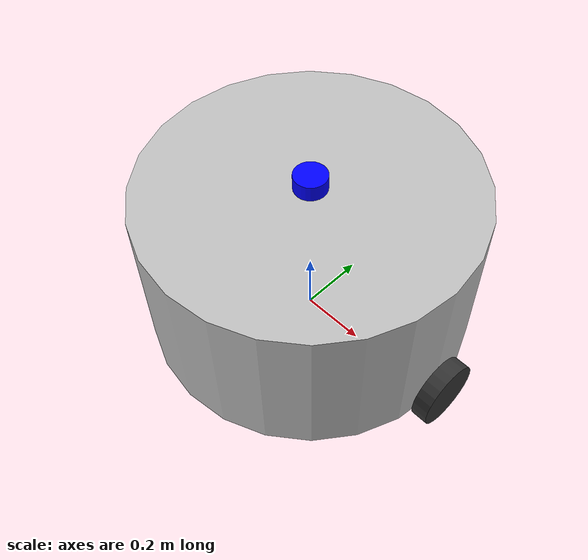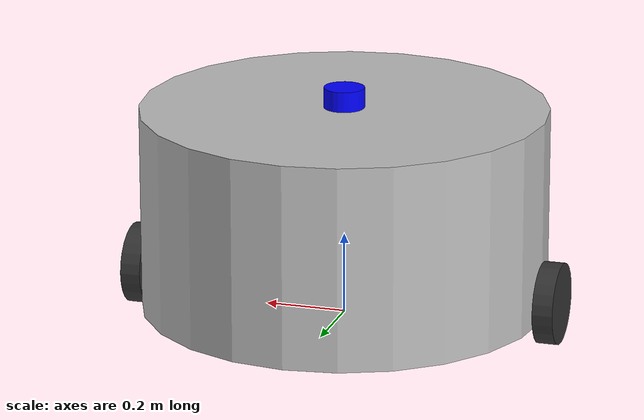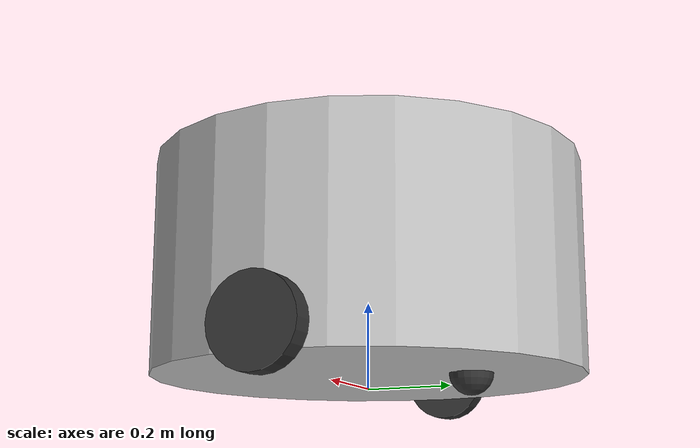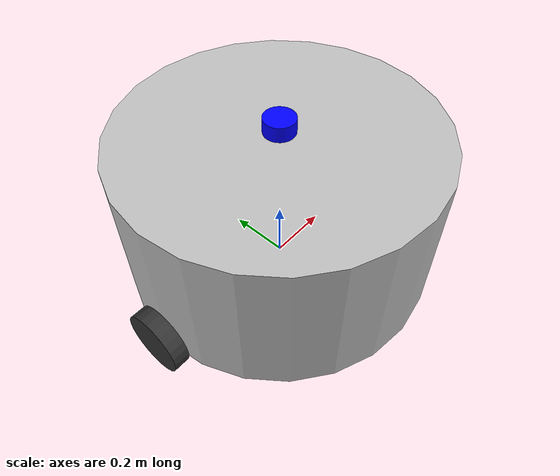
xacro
<robot name="test_robot" xmlns:xacro="http://ros.org/wiki/xacro">
    <xacro:property name="baselen" value="0.5" />
    <xacro:property name="baserad" value="0.5" />
    <xacro:property name="wheellen" value="0.05" />
    <xacro:property name="wheelrad" value="0.1" />

    <!--色の定義-->
    <material name="grey">
        <color rgba="0.75 0.75 0.75 1"/>
    </material>
    <material name="blue">
        <color rgba="0.0 0.0 1 1"/>
    </material>
    <material name="black">
        <color rgba="0.2 0.2 0.2 1"/>
    </material>

    <!--baseの慣性-->
    <xacro:macro name="base_inertia">
        <inertial>
            <origin xyz="0 0 ${(baselen/2)+0.05}"/>
            <mass value="2"/>
            <inertia ixx="${1/4*2*baserad*baserad+1/12*2*baselen}" ixy="0.0" ixz="0.0" iyy="${1/4*2*baserad*baserad+1/12*2*baselen}" iyz="0.0" izz="${1/2*2*baserad*baserad}"/>
        </inertial>
    </xacro:macro>

    <!--bodyの作成-->
    <link name="base_link">
        <visual>
            <geometry>
                <cylinder length="${baselen}" radius="${baserad}"/>
            </geometry>
            <origin xyz ="0 0 ${(baselen/2)+0.05}"/>
            <material name="grey"/>
        </visual>
        <collision>
            <geometry>
                <cylinder length="${baselen}" radius="${baserad}"/>
            </geometry>
            <origin xyz ="0 0 ${(baselen/2)+0.05}"/>
        </collision>
        <xacro:base_inertia/>
    </link>
    <gazebo reference="base_link">
        <material>
            Gazebo/Orange
        </material>
    </gazebo>

    <!--lidar(odom)の作成-->
    <link name='odom'>
        <visual>
            <geometry>
                <cylinder length="0.05" radius="0.05"/>
            </geometry>
            <origin xyz="0 0 ${baselen+0.05}"/>
            <material name="blue"/>
        </visual>
    </link>

    <!--右の車輪-->
    <link name="right_wheel">
        <visual>
        <geometry>
            <cylinder length="${wheellen}" radius="${wheelrad}"/>
        </geometry>
        <origin rpy="0 1.57075 0" xyz="0 0 0"/>
        <material name="black"/>
        </visual>
        <collision>
            <geometry>
                <cylinder length="${wheellen}" radius="${wheelrad}"/>
            </geometry>
            <origin rpy="0 1.57075 0" xyz="0 0 0"/>
        </collision>
        <inertial>
            <origin rpy="0 1.57075 0" xyz="0 0 0"/>
            <mass value="1"/>
            <inertia ixx="${1/4*1*wheelrad*wheelrad+1/12*2*wheellen}" ixy="0.0" ixz="0.0" iyy="${1/4*1*wheelrad*wheelrad+1/12*2*wheellen}" iyz="0.0" izz="${1/2*1*wheelrad*wheelrad}"/>
        </inertial>
    </link>
    <gazebo reference="right_wheel">
        <material>
            Gazebo/Black
        </material>
    </gazebo>

    <!--左の車輪-->
    <link name="left_wheel">
        <visual>
        <geometry>
            <cylinder length="${wheellen}" radius="${wheelrad}"/>
        </geometry>
        <origin rpy="0 1.57075 0" xyz="0 0 0"/>
        <material name="black"/>
        </visual>
        <collision>
            <geometry>
                <cylinder length="${wheellen}" radius="${wheelrad}"/>
            </geometry>
            <origin rpy="0 1.57075 0" xyz="0 0 0"/>
        </collision>
        <inertial>
            <origin rpy="0 1.57075 0" xyz="0 0 0"/>
            <mass value="1"/>
            <inertia ixx="${1/4*1*wheelrad*wheelrad+1/12*2*wheellen}" ixy="0.0" ixz="0.0" iyy="${1/4*1*wheelrad*wheelrad+1/12*2*wheellen}" iyz="0.0" izz="${1/2*2*wheelrad*wheelrad}"/>
        </inertial>
    </link>
    <gazebo reference="left_wheel">
        <material>
            Gazebo/Black
        </material>
    </gazebo>

    <!--受動輪-->
    <link name="caster_wheel">
        <visual>
        <geometry>
            <sphere radius="0.05"/>
        </geometry>
        <origin rpy="0 0 0" xyz="0 0 0"/>
        <material name="black"/>
        </visual>
        <collision>
            <geometry>
                <sphere radius="0.05"/>
            </geometry>
            <origin rpy="0 0 0" xyz="0 0 0"/>
        </collision>
        <inertial>
            <origin rpy="0 1.57075 0" xyz="0 0 0"/>
            <mass value="1"/>
            <inertia ixx="${2/5*1*0.05*0.05}" ixy="0" ixz="0" iyy="${2/5*1*0.05*0.05}" iyz="0" izz="${2/5*1*0.05*0.05}"/>
        </inertial>
    </link>

    <!--###########ジョイントの作成##########-->
    <!--odomとbase_link-->
    <joint name="odom_to_base_link" type="fixed">
        <parent link="odom"/>
        <child link="base_link"/>
        <origin xyz = "0 0 ${-0.05/2}"/>
    <axis xyz = "0 0 1"/>
    </joint>

    <!--base_linkとright_wheel-->
    <joint name="base_link_to_right_wheel" type="continuous">
        <parent link="base_link"/>
        <child link="right_wheel"/>
        <origin xyz = "${baserad+wheellen/2} 0 ${wheelrad}"/>
        <axis xyz = "1 0 0"/>
    </joint>

    <!--base_linkとleft_wheel-->
    <joint name="base_link_to_left_wheel" type="continuous">
        <parent link="base_link"/>
        <child link="left_wheel"/>
        <origin xyz = "${-(baserad+wheellen/2)} 0 ${wheelrad}"/>
        <axis xyz = "1 0 0"/>
    </joint>

    <!--base_linkとcaster_wheel-->
    <joint name="base_link_to_caster_wheel" type="fixed">
        <parent link="base_link"/>
        <child link="caster_wheel"/>
        <origin xyz = "0 0.25 0.05"/>
        <axis xyz = "1 0 0"/>
    </joint>

    <gazebo>
    <plugin name='diff_drive' filename='libgazebo_ros_diff_drive.so'>

        <!-- wheels -->
        <left_joint>base_link_to_left_wheel</left_joint>
        <right_joint>base_link_to_right_wheel</right_joint>

        <!-- kinematics -->
        <wheel_separation>1</wheel_separation>
        <wheel_diameter>0.1</wheel_diameter>

        <!-- limits -->
        <max_wheel_torque>10</max_wheel_torque>
        <max_wheel_acceleration>1.0</max_wheel_acceleration>

        <!-- output -->
        <publish_odom>true</publish_odom>
        <publish_odom_tf>false</publish_odom_tf>
        <publish_wheel_tf>true</publish_wheel_tf>

        <odometry_frame>odom</odometry_frame>
        <robot_base_frame>base_link</robot_base_frame>
    </plugin>
    </gazebo>

</robot>
